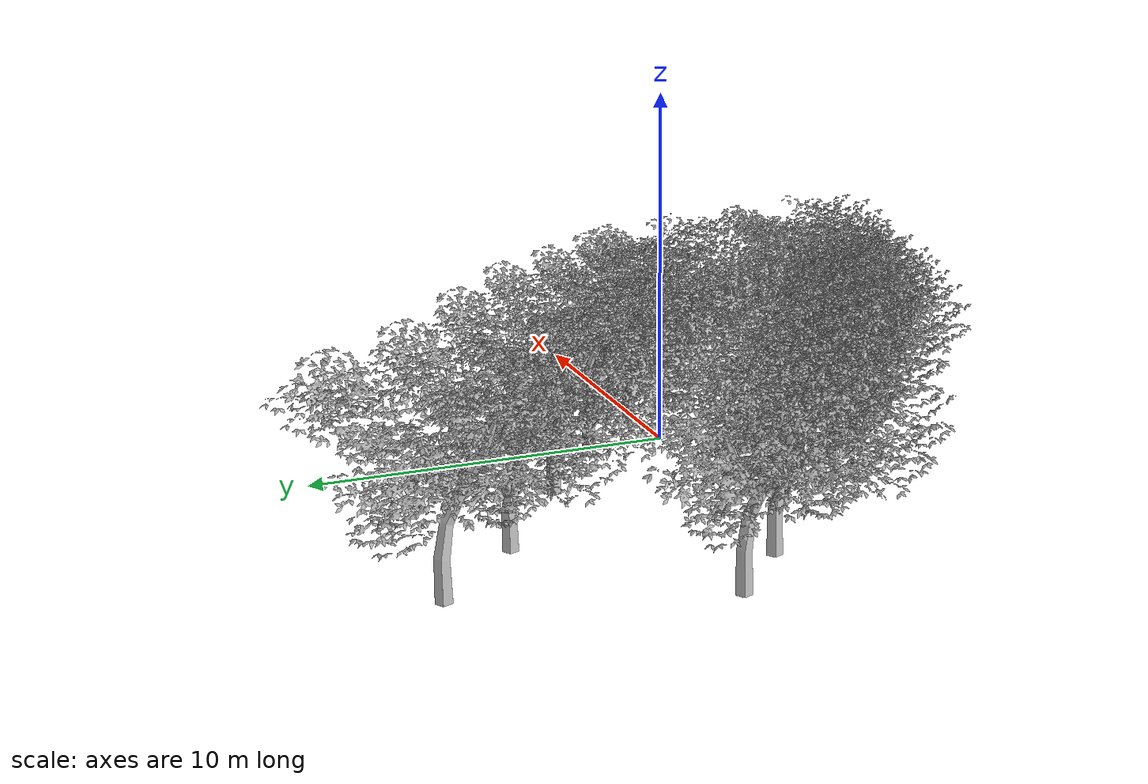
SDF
<sdf version="1.3">
 <world name="default">
  <plugin name="carina_world_plugin" filename="libcarina_world_plugin.so"/>
  <physics type="ode">
   <update_rate>1000</update_rate>
   <gravity>0.0 0.0 -9.8</gravity>
   <ode>
    <constraints>
     <cfm>0.00001</cfm>
     <erp>0.2</erp>
     <contact_max_correcting_vel>100.0</contact_max_correcting_vel>
     <contact_surface_layer>0.001</contact_surface_layer>
    </constraints>
    <solver><type>quick</type><dt>0.001</dt><iters>50</iters><sor>1.3</sor></solver>
   </ode>
  </physics>
  <scene>
   <ambient>0.0 0.0 0.0 1.0</ambient>
   <background>0.7 0.7 0.7 1.0</background>
   <sky>
    <time>12</time>
    <sunrise>5</sunrise>
    <sunset>19</sunset>
    <clouds>
     <speed>0.02</speed>
     <direction>0</direction>
     <humidity>0.8</humidity>
     <mean_size>1</mean_size>
     <ambient>0.5 0.5 0.5 1.0</ambient>
    </clouds>
   </sky>
   <shadows>true</shadows>
   <grid>false</grid>
  </scene>
  <light name="sun" type="directional">
   <pose>0.0 0.0 20.0 0.0 0.0 0.0</pose>
   <diffuse>0.85 0.85 0.85 1.0</diffuse>
   <specular>0.15 0.15 0.15 1.0</specular>
   <attenuation>
    <range>1000.0</range>
    <constant>0.9</constant>
    <linear>0.01</linear>
    <quadratic>0.001</quadratic>
   </attenuation>
   <direction>-0.5 0.5 -1.0</direction>
  </light>
  <model name="finihed">
   <pose>-10.000000 2.000000 0.000000 0.000000 -0.000000 0.000000</pose>
   <static>1</static>
   <link name="link">
    <inertial>
     <mass>10.000000</mass>
     <inertia>
      <ixx>0.001000</ixx>
      <ixy>0.000000</ixy>
      <ixz>0.000000</ixz>
      <iyy>0.001000</iyy>
      <iyz>0.000000</iyz>
      <izz>0.001000</izz>
     </inertia>
    </inertial>
    <collision name="collision">
     <geometry><cylinder><radius>0.150000</radius><length>5.000000</length></cylinder></geometry>
    </collision>
    <visual name="visual">
     <geometry>
      <mesh><uri>model://finihed/meshes/finihed.dae</uri><scale>1.000000 1.000000 1.000000</scale></mesh>
     </geometry>
    </visual>
    <velocity_decay><linear>0.000000</linear><angular>0.000000</angular></velocity_decay>
   </link>
  </model>
  <include>
   <name>tree_1</name>
   <uri>model://finihed</uri>
   <pose>-8.457250 0.462320 0.000000 0.000000 -0.000000 0.000000</pose>
  </include>
  <model name="tree_2">
   <include>
    <uri>model://finihed</uri>
    <pose>-6.000000 -1.000000 0.000000 0.000000 -0.000000 0.000000</pose>
   </include>
  </model>
  <model name="tree_3">
   <include>
    <uri>model://finihed</uri>
    <pose>-4.000000 -2.574660 0.000000 0.000000 -0.000000 0.000000</pose>
   </include>
  </model>
  <model name="finihed_3">
   <include>
    <uri>model://finihed</uri>
    <pose>-2.000000 -4.000000 0.000000 0.000000 -0.000000 0.000000</pose>
   </include>
  </model>
  <model name="finihed_4">
   <include>
    <uri>model://finihed</uri>
    <pose>-1.000000 -5.463300 0.000000 0.000000 -0.000000 0.000000</pose>
   </include>
  </model>
  <model name="finihed_5">
   <include>
    <uri>model://finihed</uri>
    <pose>1.487640 -7.000000 0.000000 0.000000 -0.000000 0.000000</pose>
   </include>
  </model>
  <model name="finihed_6">
   <include>
    <uri>model://finihed</uri>
    <pose>-8.000000 8.000000 0.000000 0.000000 -0.000000 0.000000</pose>
   </include>
  </model>
  <model name="finihed_7">
   <include>
    <uri>model://finihed</uri>
    <pose>-6.000000 6.000000 0.000000 0.000000 -0.000000 0.000000</pose>
   </include>
  </model>
  <model name="finihed_8">
   <include>
    <uri>model://finihed</uri>
    <pose>-3.000000 4.000000 0.000000 0.000000 -0.000000 0.000000</pose>
   </include>
  </model>
  <model name="finihed_9">
   <include>
    <uri>model://finihed</uri>
    <pose>0.000000 2.000000 0.000000 0.000000 -0.000000 0.000000</pose>
   </include>
  </model>
  <model name="finihed_10">
   <include>
    <uri>model://finihed</uri>
    <pose>2.000000 0.000000 0.000000 0.000000 -0.000000 0.000000</pose>
   </include>
  </model>
  <model name="finihed_11">
   <include>
    <uri>model://finihed</uri>
    <pose>4.000000 -2.000000 0.000000 0.000000 -0.000000 0.000000</pose>
   </include>
  </model>
  <model name="finihed_12">
   <include>
    <uri>model://finihed</uri>
    <pose>5.000000 -3.000000 0.000000 0.000000 -0.000000 0.000000</pose>
   </include>
  </model>
  <model name="finihed_13">
   <include>
    <uri>model://finihed</uri>
    <pose>3.559530 -8.000000 0.000000 0.000000 -0.000000 0.000000</pose>
   </include>
  </model>
  <model name="finihed_14">
   <include>
    <uri>model://finihed</uri>
    <pose>6.000000 -9.000000 0.000000 0.000000 -0.000000 0.000000</pose>
   </include>
  </model>
  <model name="finihed_15">
   <include>
    <uri>model://finihed</uri>
    <pose>7.459510 -9.000000 0.000000 0.000000 -0.000000 0.000000</pose>
   </include>
  </model>
 </world>
</sdf>

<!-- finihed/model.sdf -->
<sdf version="1.4">
	<model name="finihed">
		<pose>0 0 0 0 0 0</pose>
		<static>true</static>
		<allow_auto_disable>false</allow_auto_disable>
		<link name="link">
			<pose>0 0 0 0 0 0</pose>
			<inertial>
				<mass>10</mass>
				<pose>0 0 0 0 0 0</pose>
				<inertia>
					<ixx>0.001</ixx>
					<ixy>0</ixy>
					<ixz>0</ixz>
					<iyy>0.001</iyy>
					<iyz>0</iyz>
					<izz>0.001</izz>
				</inertia>
			</inertial>

			<collision name="collision">
				<laser_retro>0.5</laser_retro>
				<geometry>
					<pose>0 -0.05 0 0 0 0</pose>
					<cylinder>
						<radius>0.15</radius>
						<length>2.001</length>
					</cylinder>
				</geometry>
			</collision>

			<visual name="visual">
				<geometry>
					<mesh>
						<uri>model://finihed/meshes/finihed.dae</uri>
						<scale>1 1 1</scale>
					</mesh>
				</geometry>
			</visual>
			<self_collide>false</self_collide>
			<kinematic>false</kinematic>
			<gravity>true</gravity>
		</link>
	</model>
</sdf>
